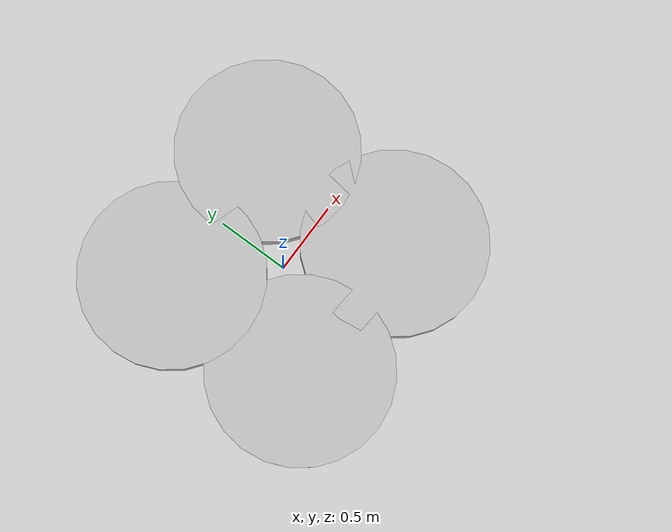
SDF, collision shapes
<?xml version='1.0'?>
<sdf version='1.6'>
  <model name='ingenuity'>
    <pose>0 0 0.194 0 0 0</pose>

    <link name='base_link'>
      <velocity_decay>
        <linear>0.0</linear>
        <angular>0.0</angular>
      </velocity_decay>

      <inertial>
        <pose>0 0 0 0 0 0</pose>
        <mass>1.8</mass>
        <inertia>
          <ixx>0.008</ixx>
          <ixy>0</ixy>
          <ixz>0</ixz>
          <iyy>0.015</iyy>
          <iyz>0</iyz>
          <izz>0.017</izz>
        </inertia>
      </inertial>

      <collision name='base_link_collision_fl'>
        <pose>0.295 0.295 -0.169 0 0 0</pose>
        <geometry>
          <box>
            <size>0.05 0.05 0.05</size>
          </box>
        </geometry>
        <surface>
          <contact>
            <ode>
              <max_vel>100.0</max_vel>
              <min_depth>0.001</min_depth>
            </ode>
          </contact>
          <friction>
            <ode>
              <mu>1.0</mu>
              <mu2>1.0</mu2>
            </ode>
          </friction>
        </surface>
      </collision>

      <collision name='base_link_collision_fr'>
        <pose>0.295 -0.295 -0.169 0 0 0</pose>
        <geometry>
          <box>
            <size>0.05 0.05 0.05</size>
          </box>
        </geometry>
        <surface>
          <contact>
            <ode>
              <max_vel>100.0</max_vel>
              <min_depth>0.001</min_depth>
            </ode>
          </contact>
          <friction>
            <ode>
              <mu>1.0</mu>
              <mu2>1.0</mu2>
            </ode>
          </friction>
        </surface>
      </collision>

      <collision name='base_link_collision_br'>
        <pose>-0.295 -0.295 -0.169 0 0 0</pose>
        <geometry>
          <box>
            <size>0.05 0.05 0.05</size>
          </box>
        </geometry>
        <surface>
          <contact>
            <ode>
              <max_vel>100.0</max_vel>
              <min_depth>0.001</min_depth>
            </ode>
          </contact>
          <friction>
            <ode>
              <mu>1.0</mu>
              <mu2>1.0</mu2>
            </ode>
          </friction>
        </surface>
      </collision>

      <collision name='base_link_collision_bl'>
        <pose>-0.295 0.295 -0.169 0 0 0</pose>
        <geometry>
          <box>
            <size>0.05 0.05 0.05</size>
          </box>
        </geometry>
        <surface>
          <contact>
            <ode>
              <max_vel>100.0</max_vel>
              <min_depth>0.001</min_depth>
            </ode>
          </contact>
          <friction>
            <ode>
              <mu>1.0</mu>
              <mu2>1.0</mu2>
            </ode>
          </friction>
        </surface>
      </collision>

      <visual name='base_link_visual'>
        <geometry>
          <mesh>
            <uri>model://ingenuity_base/meshes/ingenuity.dae</uri>
          </mesh>
        </geometry>

      </visual>

    </link>
    <link name='ingenuity/ground_truth/odometry_sensorgt_link'>
      <pose>0 0 0 0 -0 0</pose>
      <inertial>
        <pose>0 0 0 0 -0 0</pose>
        <mass>0.15</mass>
        <inertia>
          <ixx>0.0001</ixx>
          <ixy>0</ixy>
          <ixz>0</ixz>
          <iyy>0.0002</iyy>
          <iyz>0</iyz>
          <izz>0.0002</izz>
        </inertia>
      </inertial>
    </link>
    <joint name='ingenuity/ground_truth/odometry_sensorgt_joint' type='revolute'>
      <child>ingenuity/ground_truth/odometry_sensorgt_link</child>
      <parent>base_link</parent>
      <axis>
        <xyz>0 0 1</xyz>
        <limit>
          <lower>0</lower>
          <upper>0</upper>
          <effort>0</effort>
          <velocity>0</velocity>
        </limit>
        <dynamics>
          <damping>1.0</damping>
        </dynamics>
        <use_parent_model_frame>1</use_parent_model_frame>
      </axis>
      <physics>
        <ode>
          <implicit_spring_damper>1</implicit_spring_damper>
        </ode>
      </physics>
    </joint>
    <link name='ingenuity/imu_link'>
      <inertial>
        <pose>0 0 0 0 0 0</pose>
        <mass>0.15</mass>
        <inertia>
          <ixx>0.00001</ixx>
          <ixy>0</ixy>
          <ixz>0</ixz>
          <iyy>0.00002</iyy>
          <iyz>0</iyz>
          <izz>0.00002</izz>
        </inertia>
      </inertial>
      <sensor name="imu_sensor" type="imu">
        <pose>0 0 0 3.141593 0 0</pose>
        <always_on>1</always_on>
        <update_rate>1000.0</update_rate>
      </sensor>
    </link>
    <joint name='ingenuity/imu_joint' type='revolute'>
      <child>ingenuity/imu_link</child>
      <parent>base_link</parent>
      <axis>
        <xyz>0 0 1</xyz>
        <limit>
          <lower>0</lower>
          <upper>0</upper>
          <effort>0</effort>
          <velocity>0</velocity>
        </limit>
        <dynamics>
          <damping>1.0</damping>
        </dynamics>
        <use_parent_model_frame>1</use_parent_model_frame>
      </axis>
      <physics>
        <ode>
          <implicit_spring_damper>1</implicit_spring_damper>
        </ode>
      </physics>
    </joint>
    <link name='rotor_0'>
      <pose>0.5 -0.5 0.16 0 -0 0</pose>
      <inertial>
        <pose>0 0 0 0 -0 0</pose>
        <mass>0.025</mass>
        <!-- lasam asa pana cand-->
        <inertia>
          <ixx>9.75e-06</ixx>
          <ixy>0</ixy>
          <ixz>0</ixz>
          <iyy>0.000166704</iyy>
          <iyz>0</iyz>
          <izz>0.000167604</izz>
          <!--trebuie de calculat-->
        </inertia>
      </inertial>
      <collision name='rotor_0_collision'>
        <pose>0 0 0 0 -0 0</pose>
        <geometry>
          <cylinder>
            <length>0.1</length>
            <radius>0.6</radius>
          </cylinder>
        </geometry>
        <surface>
          <contact>
            <ode/>
          </contact>
          <friction>
            <ode/>
          </friction>
        </surface>
      </collision>
      <visual name='rotor_0_visual'>
        <pose>0 0 0 0 -0 0</pose>
        <geometry>
          <mesh>
            <scale>1 1 1</scale>
            <uri>model://ingenuity_base/meshes/ingenuity_prop_ccw.dae</uri>
          </mesh>
        </geometry>
      </visual>
      <gravity>1</gravity>
      <velocity_decay/>
      <self_collide>0</self_collide>
    </link>
    <joint name='rotor_0_joint' type='revolute'>
      <child>rotor_0</child>
      <parent>base_link</parent>
      <axis>
        <xyz>0 0 1</xyz>
        <limit>
          <lower>-1e+16</lower>
          <upper>1e+16</upper>
        </limit>
        <dynamics>
          <damping>0.004</damping>
        </dynamics>
        <use_parent_model_frame>1</use_parent_model_frame>
      </axis>
      <physics>
        <ode>
          <implicit_spring_damper>1</implicit_spring_damper>
        </ode>
      </physics>
    </joint>

    <link name='rotor_1'>
      <pose>-0.5 0.5 0.16 0 -0 0</pose>
      <inertial>
        <pose>0 0 0 0 -0 0</pose>
        <mass>0.025</mass>
        <inertia>
          <ixx>9.75e-06</ixx>
          <ixy>0</ixy>
          <ixz>0</ixz>
          <iyy>0.000166704</iyy>
          <iyz>0</iyz>
          <izz>0.000167604</izz>
        </inertia>
      </inertial>
      <collision name='rotor_1_collision'>
        <pose>0 0 0 0 -0 0</pose>
        <geometry>
          <cylinder>
            <length>0.1</length>
            <radius>0.6</radius>
          </cylinder>
        </geometry>
        <surface>
          <contact>
            <ode/>
          </contact>
          <friction>
            <ode/>
          </friction>
        </surface>
      </collision>
      <visual name='rotor_1_visual'>
        <pose>0 0 0 0 -0 0</pose>
        <geometry>
          <mesh>
            <scale>1 1 1</scale>
            <uri>model://ingenuity_base/meshes/ingenuity_prop_ccw.dae</uri>
          </mesh>
        </geometry>
      </visual>
      <gravity>1</gravity>
      <velocity_decay/>
      <self_collide>0</self_collide>
    </link>
    <joint name='rotor_1_joint' type='revolute'>
      <child>rotor_1</child>
      <parent>base_link</parent>
      <axis>
        <xyz>0 0 1</xyz>
        <limit>
          <lower>-1e+16</lower>
          <upper>1e+16</upper>
        </limit>
        <dynamics>
          <damping>0.004</damping>
        </dynamics>
        <use_parent_model_frame>1</use_parent_model_frame>
      </axis>
      <physics>
        <ode>
          <implicit_spring_damper>1</implicit_spring_damper>
        </ode>
      </physics>
    </joint>
    <link name='rotor_2'>
      <pose>0.5 0.5 0.16 0 -0 0</pose>
      <inertial>
        <pose>0 0 0 0 -0 0</pose>
        <mass>0.025</mass>
        <inertia>
          <ixx>9.75e-06</ixx>
          <ixy>0</ixy>
          <ixz>0</ixz>
          <iyy>0.000166704</iyy>
          <iyz>0</iyz>
          <izz>0.000167604</izz>
        </inertia>
      </inertial>
      <collision name='rotor_2_collision'>
        <pose>0 0 0 0 -0 0</pose>
        <geometry>
          <cylinder>
            <length>0.1</length>
            <radius>0.6</radius>
          </cylinder>
        </geometry>
        <surface>
          <contact>
            <ode/>
          </contact>
          <friction>
            <ode/>
          </friction>
        </surface>
      </collision>
      <visual name='rotor_2_visual'>
        <pose>0 0 0 0 -0 0</pose>
        <geometry>
          <mesh>
            <scale>1 1 1</scale>
            <uri>model://ingenuity_base/meshes/ingenuity_prop_cw.dae</uri>
          </mesh>
        </geometry>
      </visual>
      <gravity>1</gravity>
      <velocity_decay/>
      <self_collide>0</self_collide>
    </link>
    <joint name='rotor_2_joint' type='revolute'>
      <child>rotor_2</child>
      <parent>base_link</parent>
      <axis>
        <xyz>0 0 1</xyz>
        <limit>
          <lower>-1e+16</lower>
          <upper>1e+16</upper>
        </limit>
        <dynamics>
          <damping>0.004</damping>
        </dynamics>
        <use_parent_model_frame>1</use_parent_model_frame>
      </axis>
      <physics>
        <ode>
          <implicit_spring_damper>1</implicit_spring_damper>
        </ode>
      </physics>
    </joint>
    <link name='rotor_3'>
      <pose>-0.5 -0.5 0.16 0 -0 0</pose>
      <inertial>
        <pose>0 0 0 0 -0 0</pose>
        <mass>0.025</mass>
        <inertia>
          <ixx>9.75e-06</ixx>
          <ixy>0</ixy>
          <ixz>0</ixz>
          <iyy>0.000166704</iyy>
          <iyz>0</iyz>
          <izz>0.000167604</izz>
        </inertia>
      </inertial>
      <collision name='rotor_3_collision'>
        <pose>0 0 0 0 -0 0</pose>
        <geometry>
          <cylinder>
            <length>0.1</length>
            <radius>0.6</radius>
          </cylinder>
        </geometry>
        <surface>
          <contact>
            <ode/>
          </contact>
          <friction>
            <ode/>
          </friction>
        </surface>
      </collision>
      <visual name='rotor_3_visual'>
        <pose>0 0 0 0 -0 0</pose>
        <geometry>
          <mesh>
            <scale>1 1 1</scale>
            <uri>model://ingenuity_base/meshes/ingenuity_prop_cw.dae</uri>
          </mesh>
        </geometry>
      </visual>
      <gravity>1</gravity>
      <velocity_decay/>
      <self_collide>0</self_collide>
    </link>
    <joint name='rotor_3_joint' type='revolute'>
      <child>rotor_3</child>
      <parent>base_link</parent>
      <axis>
        <xyz>0 0 1</xyz>
        <limit>
          <lower>-1e+16</lower>
          <upper>1e+16</upper>
        </limit>
        <dynamics>
          <damping>0.004</damping>
        </dynamics>
        <use_parent_model_frame>1</use_parent_model_frame>
      </axis>
      <physics>
        <ode>
          <implicit_spring_damper>1</implicit_spring_damper>
        </ode>
      </physics>
    </joint>
    <static>0</static>
  </model>
</sdf>
